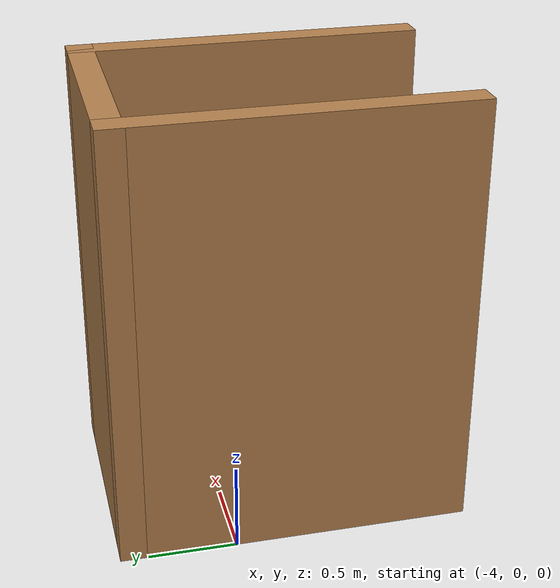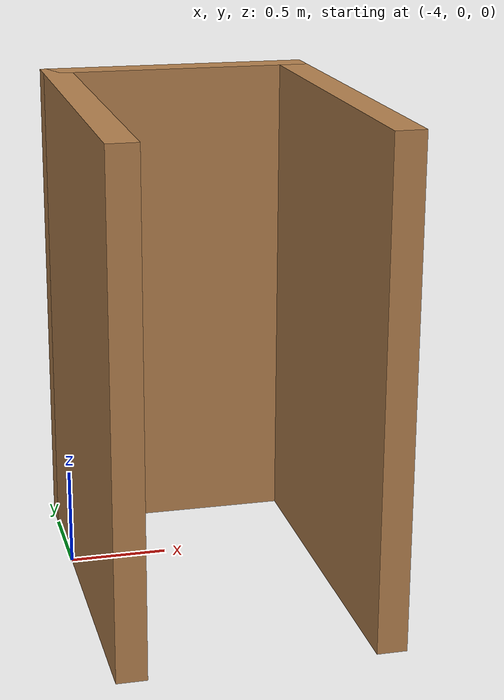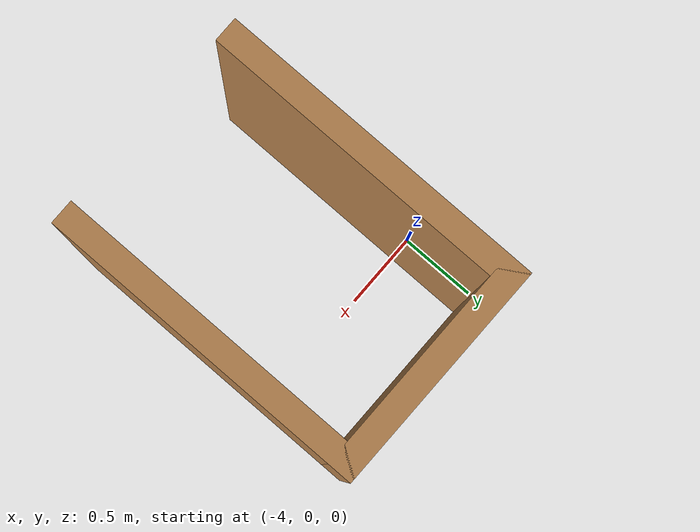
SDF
<?xml version='1.0'?>
<sdf version='1.7'>
  <model name='prova'>
    <pose>-2.00093 -0.344332 0 0 -0 0</pose>
    <link name='Wall_10'>
      <collision name='Wall_10_Collision'>
        <geometry>
          <box>
            <size>1.4 0.15 2.5</size>
          </box>
        </geometry>
        <pose>0 0 1.25 0 -0 0</pose>
      </collision>
      <visual name='Wall_10_Visual'>
        <pose>0 0 1.25 0 -0 0</pose>
        <geometry>
          <box>
            <size>1.4 0.15 2.5</size>
          </box>
        </geometry>
        <material>
          <script>
            <uri>file://media/materials/scripts/gazebo.material</uri>
            <name>Gazebo/Wood</name>
          </script>
          <ambient>1 1 1 1</ambient>
        </material>
        <meta>
          <layer>0</layer>
        </meta>
      </visual>
      <pose>-1.30093 0.924993 0 0 -0 3.14159</pose>
    </link>
    <link name='Wall_11'>
      <collision name='Wall_11_Collision'>
        <geometry>
          <box>
            <size>1.99003 0.15 2.5</size>
          </box>
        </geometry>
        <pose>0 0 1.25 0 -0 0</pose>
      </collision>
      <visual name='Wall_11_Visual'>
        <pose>0 0 1.25 0 -0 0</pose>
        <geometry>
          <box>
            <size>1.99003 0.15 2.5</size>
          </box>
        </geometry>
        <material>
          <script>
            <uri>file://media/materials/scripts/gazebo.material</uri>
            <name>Gazebo/Wood</name>
          </script>
          <ambient>1 1 1 1</ambient>
        </material>
        <meta>
          <layer>0</layer>
        </meta>
      </visual>
      <pose>-1.92593 0.004993 0 0 -0 -1.5708</pose>
    </link>
    <link name='Wall_9'>
      <collision name='Wall_9_Collision'>
        <geometry>
          <box>
            <size>2 0.15 2.5</size>
          </box>
        </geometry>
        <pose>0 0 1.25 0 -0 0</pose>
      </collision>
      <visual name='Wall_9_Visual'>
        <pose>0 0 1.25 0 -0 0</pose>
        <geometry>
          <box>
            <size>2 0.15 2.5</size>
          </box>
        </geometry>
        <material>
          <script>
            <uri>file://media/materials/scripts/gazebo.material</uri>
            <name>Gazebo/Wood</name>
          </script>
          <ambient>1 1 1 1</ambient>
        </material>
        <meta>
          <layer>0</layer>
        </meta>
      </visual>
      <pose>-0.675932 -7e-06 0 0 -0 1.5708</pose>
    </link>
    <static>1</static>
  </model>
</sdf>
